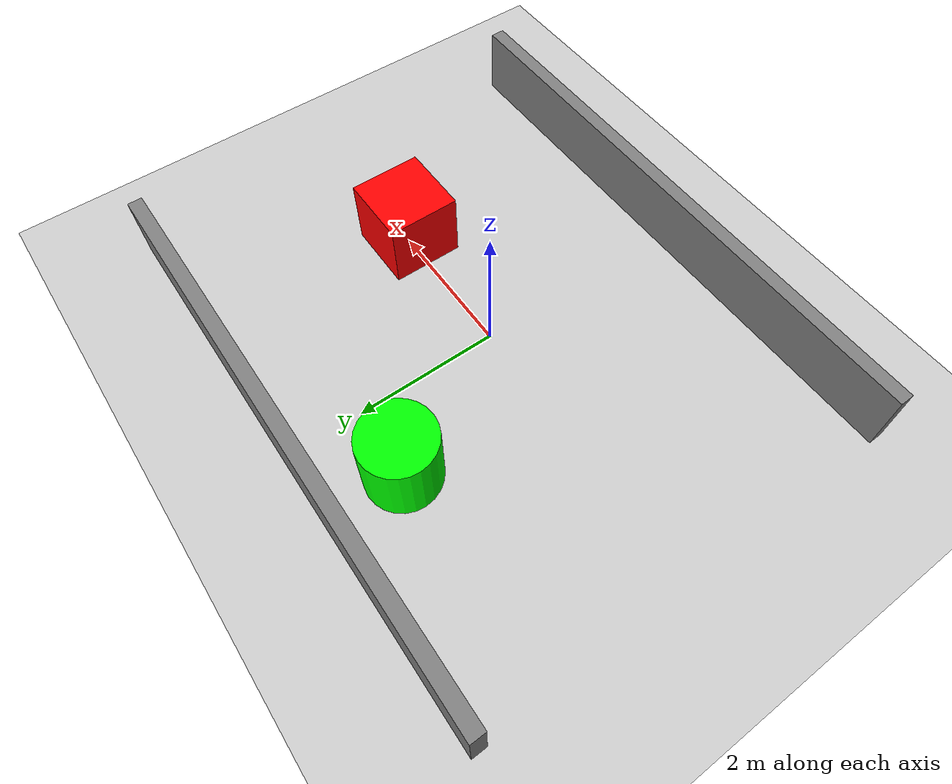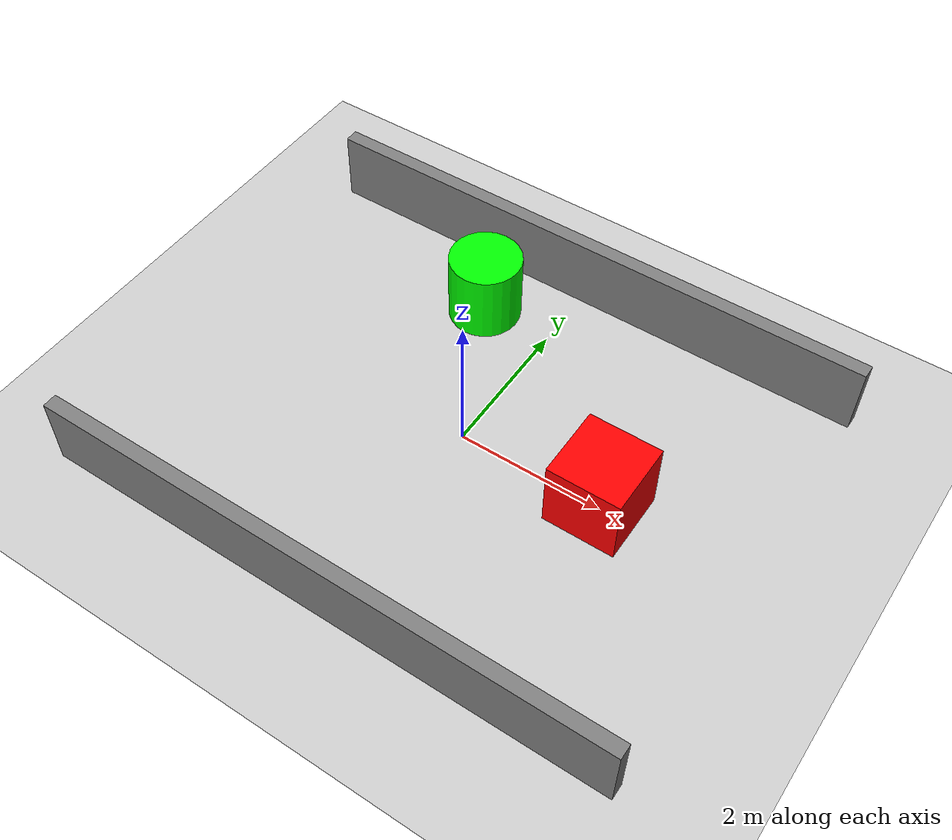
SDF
<?xml version="1.0"?>
<sdf version="1.6">
  <world name="default">
    <!-- Add a ground plane -->
    <include>
      <uri>model://ground_plane</uri>
    </include>

    <!-- Add lighting -->
    <include>
      <uri>model://sun</uri>
    </include>

    <!-- Add a box obstacle -->
    <model name="box1">
      <pose>2 0 0.5 0 0 0</pose>
      <static>true</static>
      <link name="link">
        <collision name="collision">
          <geometry>
            <box>
              <size>1 1 1</size>
            </box>
          </geometry>
        </collision>
        <visual name="visual">
          <geometry>
            <box>
              <size>1 1 1</size>
            </box>
          </geometry>
          <material>
            <ambient>1 0 0 1</ambient>
            <diffuse>1 0 0 1</diffuse>
          </material>
        </visual>
      </link>
    </model>

    <!-- Add a cylinder obstacle -->
    <model name="cylinder1">
      <pose>-1 2 0.5 0 0 0</pose>
      <static>true</static>
      <link name="link">
        <collision name="collision">
          <geometry>
            <cylinder>
              <radius>0.5</radius>
              <length>1.0</length>
            </cylinder>
          </geometry>
        </collision>
        <visual name="visual">
          <geometry>
            <cylinder>
              <radius>0.5</radius>
              <length>1.0</length>
            </cylinder>
          </geometry>
          <material>
            <ambient>0 1 0 1</ambient>
            <diffuse>0 1 0 1</diffuse>
          </material>
        </visual>
      </link>
    </model>

    <!-- Add walls -->
    <model name="wall1">
      <pose>0 3 0.5 0 0 0</pose>
      <static>true</static>
      <link name="link">
        <collision name="collision">
          <geometry>
            <box>
              <size>8 0.2 1</size>
            </box>
          </geometry>
        </collision>
        <visual name="visual">
          <geometry>
            <box>
              <size>8 0.2 1</size>
            </box>
          </geometry>
          <material>
            <ambient>0.5 0.5 0.5 1</ambient>
            <diffuse>0.5 0.5 0.5 1</diffuse>
          </material>
        </visual>
      </link>
    </model>

    <model name="wall2">
      <pose>0 -3 0.5 0 0 0</pose>
      <static>true</static>
      <link name="link">
        <collision name="collision">
          <geometry>
            <box>
              <size>8 0.2 1</size>
            </box>
          </geometry>
        </collision>
        <visual name="visual">
          <geometry>
            <box>
              <size>8 0.2 1</size>
            </box>
          </geometry>
          <material>
            <ambient>0.5 0.5 0.5 1</ambient>
            <diffuse>0.5 0.5 0.5 1</diffuse>
          </material>
        </visual>
      </link>
    </model>
  </world>
</sdf>
